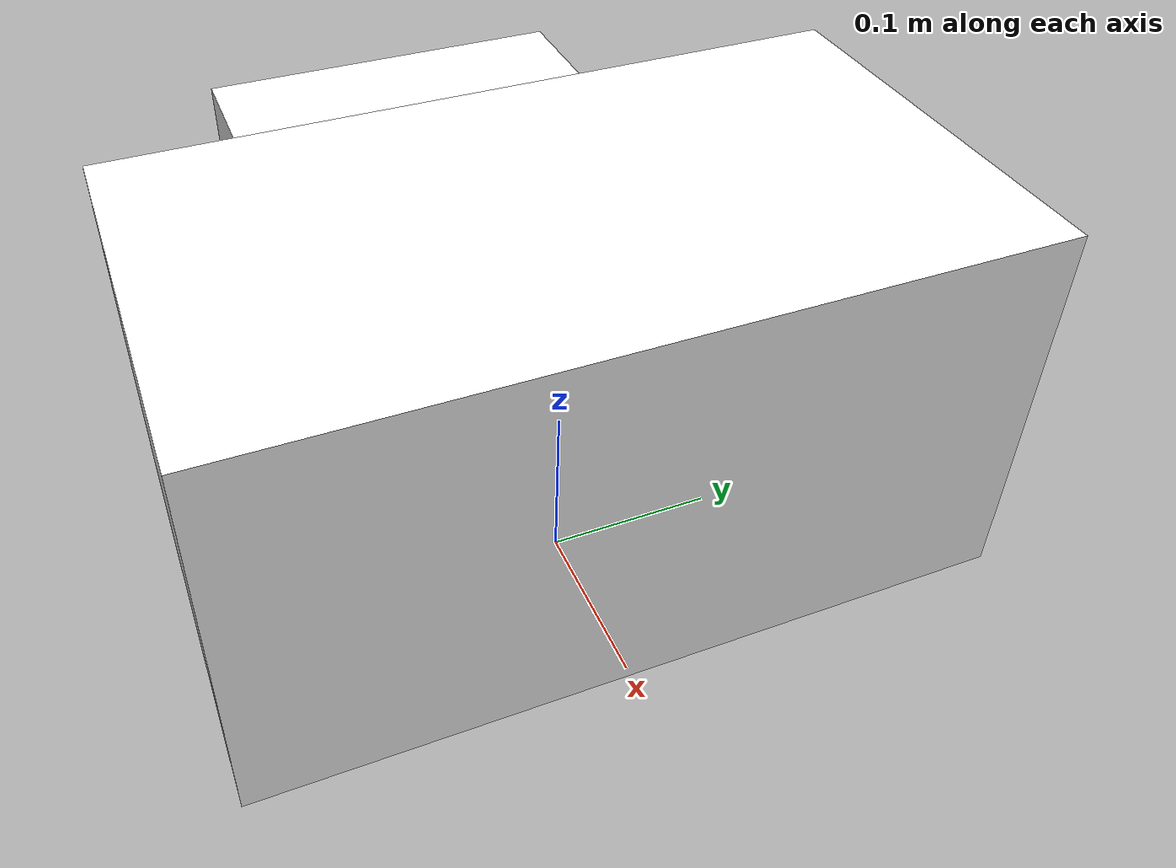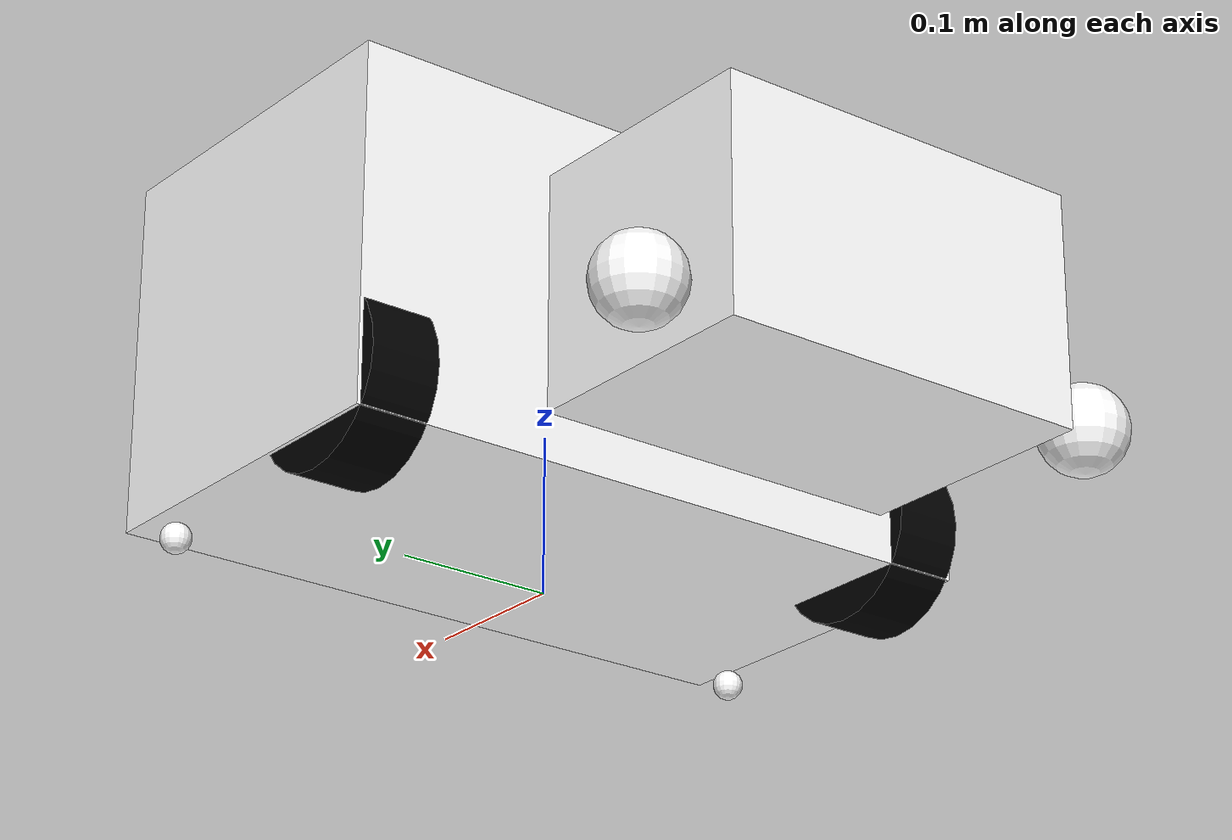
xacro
<?xml version="1.0"?>
<robot name="do" xmlns:xacro="http://www.ros.org/wiki/xacro">

    <xacro:arg name="use_ros2_control" default="true"/>
    <xacro:arg name="use_sim" default="false"/>

	<xacro:property name="mm_to_m" value="0.001"/>

	<xacro:property name="base_link_length" value="${240 * mm_to_m}"/>
	<xacro:property name="base_link_width" value="${433 * mm_to_m}"/>
	<xacro:property name="base_link_height" value="${224 * mm_to_m}"/>
	<xacro:property name="base_link_ground_clearance" value="${23 * mm_to_m}"/>

	<xacro:property name="ball_wheels_radius" value="${9.5 * mm_to_m}"/>
	<xacro:property name="ball_wheels_x_offset" value="${79.3 * mm_to_m}"/>
	<xacro:property name="ball_wheels_spacing" value="${413.5 * mm_to_m}"/>

	<xacro:property name="wheels_radius" value="${55.5 * mm_to_m}"/>
	<xacro:property name="wheels_width" value="${44 * mm_to_m}"/>
	<xacro:property name="wheels_x_offset" value="${75 * mm_to_m}"/>
	<xacro:property name="wheels_spacing" value="${384 * mm_to_m}"/>

	<xacro:property name="trailer_length" value="${160 * mm_to_m}"/>
	<xacro:property name="trailer_width" value="${243 * mm_to_m}"/>
	<xacro:property name="trailer_height" value="${145 * mm_to_m}"/>
	<xacro:property name="trailer_ground_clearance" value="${7.5 * mm_to_m}"/>
	<xacro:property name="trailer_visual_x_offset" value="${165 * mm_to_m}"/>

	<xacro:property name="trailer_axis_x_offset" value="${80 * mm_to_m}"/>
	<xacro:property name="trailer_axis_height" value="${100.2 * mm_to_m}"/>

	<xacro:property name="caster_wheels_radius" value="${27.5 * mm_to_m}"/>
	<xacro:property name="caster_wheels_x_offset" value="${215 * mm_to_m}"/>
	<xacro:property name="caster_wheels_spacing" value="${320 * mm_to_m}"/>

	<xacro:property name="lidar_radius" value="${35 * mm_to_m}"/>
	<xacro:property name="lidar_height" value="${20 * mm_to_m}"/>
	<xacro:property name="lidar_x_offset" value="${67 * mm_to_m}"/>
	<xacro:property name="lidar_z_offset" value="${233 * mm_to_m}"/>
	<xacro:property name="lidar_mass" value="${0.170}"/>

	<xacro:property name="total_mass" value="4.7"/>

	<xacro:include filename="materials.xacro"/>
	<xacro:include filename="do_inertia.xacro"/>
	<xacro:include filename="do_chassis.xacro"/>
	<xacro:include filename="do_trailer.xacro"/>
	<xacro:include filename="lidar.xacro"/>

	<xacro:include filename="gazebo.xacro"/>
</robot>

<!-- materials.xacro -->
<robot xmlns:xacro="http://www.ros.org/wiki/xacro">

	<material name="white">
        <color rgba="1 1 1 1" />
    </material>

    <material name="black">
        <color rgba="0 0 0 1" />
    </material>

</robot>

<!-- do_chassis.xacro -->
<robot xmlns:xacro="http://www.ros.org/wiki/xacro">

	<link name="base_link">
        <visual>
            <origin xyz="0 0 ${base_link_height / 2.0 + base_link_ground_clearance}"  rpy="0 0 0"/>
            <geometry>
                <box size="${base_link_length} ${base_link_width} ${base_link_height}"/>
            </geometry>
            <material name="white"/>
        </visual>
        <collision>
            <origin xyz="0 0 ${base_link_height / 2.0 + base_link_ground_clearance}"  rpy="0 0 0"/>
            <geometry>
                <box size="${base_link_length} ${base_link_width} ${base_link_height}"/>
            </geometry>
        </collision>
        <xacro:box_inertia m="${total_mass * 0.8 * 0.7}" l="${base_link_length}" w="${base_link_width}" h="${base_link_height}"
                       xyz="0 0 ${base_link_height / 2.0 + base_link_ground_clearance}"  rpy="0 0 0"/>
    </link>

    <link name="right_wheel">
        <visual>
            <origin xyz="0 0 0" rpy="${pi / 2.0} 0 0"/>
            <geometry>
                <cylinder length="${wheels_width}" radius="${wheels_radius}"/>
            </geometry>
            <material name="black"/>
        </visual>
        <collision>
            <origin xyz="0 0 0" rpy="${pi / 2.0} 0 0"/>
            <geometry>
                <cylinder length="${wheels_width}" radius="${wheels_radius}"/>
            </geometry>
        </collision>
        <xacro:cylinder_inertia m="${total_mass * 0.1 * 0.5}" r="${wheels_radius}" h="${wheels_width}"
                            xyz="0 0 0" rpy="${pi / 2.0} 0 0"/>
    </link>

    <link name="left_wheel">
        <visual>
            <origin xyz="0 0 0" rpy="${pi / 2.0} 0 0"/>
            <geometry>
                <cylinder length="${wheels_width}" radius="${wheels_radius}"/>
            </geometry>
            <material name="black"/>
        </visual>
        <collision>
            <origin xyz="0 0 0" rpy="${pi / 2.0} 0 0"/>
            <geometry>
                <cylinder length="${wheels_width}" radius="${wheels_radius}"/>
            </geometry>
        </collision>
        <xacro:cylinder_inertia m="${total_mass * 0.1 * 0.5}" r="${wheels_radius}" h="${wheels_width}"
                            xyz="0 0 0" rpy="${pi / 2.0} 0 0"/>
    </link>

    <link name="right_ball_wheel">
        <visual>
            <origin xyz="0 0 0" rpy="0 0 0"/>
            <geometry>
                <sphere radius="${ball_wheels_radius}"/>
            </geometry>
            <material name="white"/>
        </visual>
        <collision>
            <origin xyz="0 0 0" rpy="0 0 0"/>
            <geometry>
                <sphere radius="${ball_wheels_radius}"/>
            </geometry>
        </collision>
        <xacro:sphere_inertia m="${total_mass * 0.5 * 0.5 * 0.1}" r="${ball_wheels_radius}" xyz="0 0 0" rpy="0 0 0"/>
    </link>

    <link name="left_ball_wheel">
        <visual>
            <origin xyz="0 0 0" rpy="0 0 0"/>
            <geometry>
                <sphere radius="${ball_wheels_radius}"/>
            </geometry>
            <material name="white"/>
        </visual>
        <collision>
            <origin xyz="0 0 0" rpy="0 0 0"/>
            <geometry>
                <sphere radius="${ball_wheels_radius}"/>
            </geometry>
        </collision>
        <xacro:sphere_inertia m="${total_mass * 0.5 * 0.5 * 0.1}" r="${ball_wheels_radius}" xyz="0 0 0" rpy="0 0 0"/>
    </link>

    <joint name="right_wheel_joint" type="continuous">
	    <parent link="base_link"/>
	    <child link="right_wheel"/>
	    <origin xyz="-${wheels_x_offset} -${wheels_spacing / 2.0} ${wheels_radius}" rpy="0 0 0"/>
	    <axis xyz="0 1 0"/>
        <dynamics damping="0.1" friction="0.2"/>
	</joint>

	<joint name="left_wheel_joint" type="continuous">
	    <parent link="base_link"/>
	    <child link="left_wheel"/>
	    <origin xyz="-${wheels_x_offset} ${wheels_spacing / 2.0} ${wheels_radius}" rpy="0 0 0"/>
	    <axis xyz="0 1 0"/>
        <dynamics damping="0.1" friction="0.2"/>
	</joint>

	<joint name="right_ball_wheel_joint" type="fixed">
	    <parent link="base_link"/>
	    <child link="right_ball_wheel"/>
	    <origin xyz="${ball_wheels_x_offset} -${ball_wheels_spacing / 2.0} ${ball_wheels_radius}" rpy="0 0 0"/>
	</joint>

    <joint name="left_ball_wheel_joint" type="fixed">
        <parent link="base_link"/>
        <child link="left_ball_wheel"/>
        <origin xyz="${ball_wheels_x_offset} ${ball_wheels_spacing / 2.0} ${ball_wheels_radius}" rpy="0 0 0"/>
    </joint>

</robot>

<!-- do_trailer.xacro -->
<robot xmlns:xacro="http://www.ros.org/wiki/xacro">

	<link name="trailer">
        <visual>
            <origin xyz="-${trailer_visual_x_offset} 0 0"  rpy="0 0 0"/>
            <geometry>
                <box size="${trailer_length} ${trailer_width} ${trailer_height}"/>
            </geometry>
            <material name="white"/>
        </visual>
        <collision>
            <origin xyz="0 0 ${trailer_height / 2.0 + trailer_ground_clearance}"  rpy="0 0 0"/>
            <geometry>
                <box size="${trailer_length} ${trailer_width} ${trailer_height}"/>
            </geometry>
        </collision>
        <xacro:box_inertia m="${total_mass * 0.8 * 0.3}" l="${trailer_length}" w="${trailer_width}" h="${trailer_height}"
                       xyz="-${trailer_visual_x_offset} 0 0"  rpy="0 0 0"/>
    </link>

    <link name="right_caster_wheel">
        <visual>
            <origin xyz="0 0 0" rpy="0 0 0"/>
            <geometry>
                <sphere radius="${caster_wheels_radius}"/>
            </geometry>
            <material name="white"/>
        </visual>
        <collision>
            <origin xyz="0 0 0" rpy="0 0 0"/>
            <geometry>
                <sphere radius="${caster_wheels_radius}"/>
            </geometry>
        </collision>
        <xacro:sphere_inertia m="${total_mass * 0.5 * 0.5 * 0.1}" r="${caster_wheels_radius}" xyz="0 0 0" rpy="0 0 0"/>
    </link>

    <link name="left_caster_wheel">
        <visual>
            <origin xyz="0 0 0" rpy="0 0 0"/>
            <geometry>
                <sphere radius="${caster_wheels_radius}"/>
            </geometry>
            <material name="white"/>
        </visual>
        <collision>
            <origin xyz="0 0 0" rpy="0 0 0"/>
            <geometry>
                <sphere radius="${caster_wheels_radius}"/>
            </geometry>
        </collision>
        <xacro:sphere_inertia m="${total_mass * 0.5 * 0.5 * 0.1}" r="${caster_wheels_radius}" xyz="0 0 0" rpy="0 0 0"/>
    </link>

    <joint name="trailer_joint" type="revolute">
	    <parent link="base_link"/>
	    <child link="trailer"/>
	    <origin xyz="-${trailer_axis_x_offset} 0 ${trailer_axis_height}" rpy="0 0 0"/>
	    <axis xyz="0 1 0"/>
        <limit effort="10" velocity="1.0" lower="-0.6" upper="0.6" />
	</joint>

	<joint name="right_caster_wheel_joint" type="fixed">
	    <parent link="trailer"/>
	    <child link="right_caster_wheel"/>
	    <origin xyz="-${caster_wheels_x_offset} -${caster_wheels_spacing / 2.0} ${caster_wheels_radius - (trailer_height / 2.0 + trailer_ground_clearance)}" rpy="0 0 0"/>
	</joint>

    <joint name="left_caster_wheel_joint" type="fixed">
        <parent link="trailer"/>
        <child link="left_caster_wheel"/>
        <origin xyz="-${caster_wheels_x_offset} ${caster_wheels_spacing / 2.0} ${caster_wheels_radius - (trailer_height / 2.0 + trailer_ground_clearance)}" rpy="0 0 0"/>
    </joint>

</robot>

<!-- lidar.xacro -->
<robot name="do" xmlns:xacro="http://www.ros.org/wiki/xacro">

    <link name="laser">
        <visual>
            <origin xyz="0 0 0" rpy="0 0 0"/>
            <geometry>
                <cylinder radius="${lidar_radius}" length="${lidar_height}"/>
            </geometry>
            <material name="black"/>
        </visual>
        <collision>
            <origin xyz="0 0 0" rpy="0 0 0"/>
            <geometry>
                <cylinder radius="${lidar_radius}" length="${lidar_height}"/>
            </geometry>
        </collision>
        <xacro:cylinder_inertia m="${lidar_mass}" r="${lidar_radius}" h="${lidar_height}"
                            xyz="0 0 0" rpy="0 0 0"/>
    </link>

    <joint name="laser_joint" type="fixed">
        <parent link="base_link"/>
        <child link="laser"/>
        <origin xyz="${lidar_x_offset} 0 ${lidar_z_offset}" rpy="0 0 -${pi / 2.0}"/>
    </joint>

    <gazebo reference="laser">
        <sensor name="laser" type="ray">
            <always_on>true</always_on>
            <visualize>true</visualize>
            <update_rate>5</update_rate>
            <ray>
            <scan>
                <horizontal>
                <samples>360</samples>
                <resolution>1.000000</resolution>
                <min_angle>0.000000</min_angle>
                <max_angle>6.280000</max_angle>
                </horizontal>
            </scan>
            <range>
                <min>0.120000</min>
                <max>3.5</max>
                <resolution>0.015000</resolution>
            </range>
            <noise>
                <type>gaussian</type>
                <mean>0.0</mean>
                <stddev>0.01</stddev>
            </noise>
            </ray>
            <plugin name="scan" filename="libgazebo_ros_ray_sensor.so">
            <ros>
                <remapping>~/out:=scan</remapping>
            </ros>
            <output_type>sensor_msgs/LaserScan</output_type>
            <frame_name>laser</frame_name>
            </plugin>
        </sensor>
    </gazebo>
</robot>
